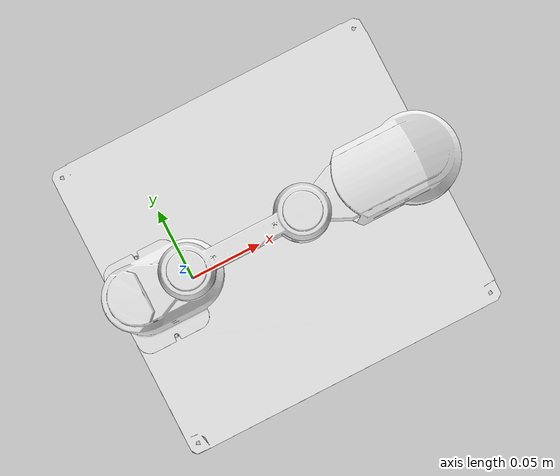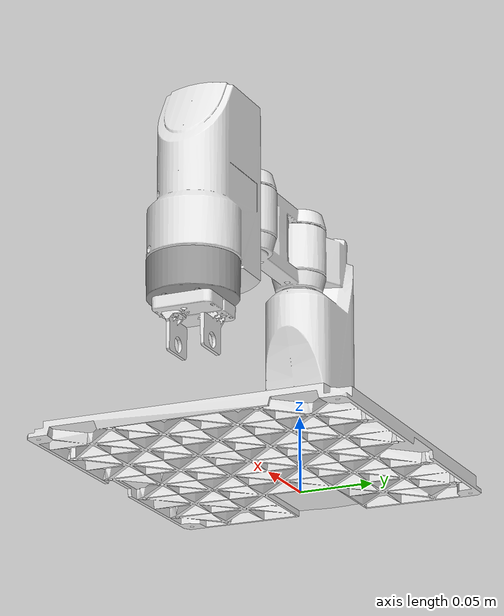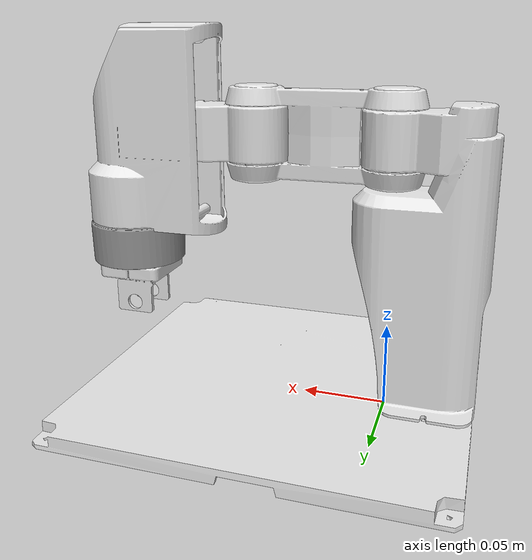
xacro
<?xml version="1.0"?>
<robot name="arm_robot" xmlns:xacro="http://www.ros.org/wiki/xacro">

  <xacro:include filename="$(find scara_robot_samples)/urdf/common.xacro"/>

  <link name="world"/>

  <joint name="base_link_joint" type="fixed">
    <parent link="world"/>
    <child link="base_link"/>
  </joint>
  <!--xacro:boxlink link_name="base_base" mass="0.191" x="0" y="0" z="0.005" depth="0.23" width="0.21" height="0.01"/-->

    <link name="base_link">
      <visual>
        <geometry>
          <mesh filename="package://scara_robot_samples/meshes/dae/scara_base.dae" />
          <!--box size="0.23 0.21 0.009" /-->
        </geometry>
        <!--origin xyz="0.062048 0 0.0045" rpy="0 0 0"/-->
        <origin xyz="0.062049 0 0.0045" rpy="0 0 0"/>
      </visual>
      <collision>
        <geometry>
          <box size="0.23031 0.21022 0.0090636" />
        </geometry>
        <origin xyz="0.062048 0 0.0045" rpy="0 0 0"/>
      </collision>
      <inertial>
        <xacro:box_inertial mass="0.191" depth="0.23031" width="0.21022" height="0.0090636" />
      </inertial>
    </link>

  <!--xacro:armlink link_name="base_base" model_fname="scara_base" mass="0.191" x="0.03103885" y="0" z="0.005" depth="0.23" width="0.21" height="0.01"/-->
  <gazebo reference="base_link">
    <material>Gazebo/White</material>
  </gazebo>

  <joint name="base_pillar_joint" type="fixed">
    <parent link="base_link"/>
    <child link="base_pillar"/>
  </joint>
  <!--xacro:boxlink link_name="base_link" mass="0.139" x="0" y="0" z="0.00349" depth="0.0789772" width="0.0699" height="0.178"/-->
  <!--xacro:armlink link_name="base_link" model_fname="scara_pillar" mass="0.139" x="0" y="0" z="0.00349" depth="0.0789772" width="0.0699" height="0.1814568"/-->

    <link name="base_pillar">
      <visual>
        <geometry>
          <mesh filename="package://scara_robot_samples/meshes/dae/scara_pillar.dae" />
          <!--box size="0.0747846 0.0699 0.178" /-->
        </geometry>
        <origin xyz="-0.017177 0 0.092449" rpy="0 0 0"/>
      </visual>
      <collision>
        <geometry>
          <mesh filename="package://scara_robot_samples/meshes/dae/scara_pillar.dae" />
          <!--box size="0.079075 0.064949 0.17801" /-->
        </geometry>
        <origin xyz="-0.017177 0 0.092449" rpy="0 0 0"/>
      </collision>
      <inertial>
        <xacro:box_inertial mass="0.139" depth="0.079075" width="0.064949" height="0.17801" />
      </inertial>
    </link>

  <gazebo reference="base_pillar">
    <material>Gazebo/White</material>
  </gazebo>

  <joint name="arm1_joint" type="revolute">
    <xacro:armjoint
      parent_link="base_pillar" link_name="arm1_link" lower="-2.443" upper="2.443" velocity="1"
      origin_x="0.0" origin_y="0" origin_z="0.16148" axis_x="0" axis_y="0" axis_z="1">
    </xacro:armjoint>
  </joint>
  <xacro:arm_transmission trans_name="arm1_trans" joint_name="arm1_joint" actuator_name="arm1_motor" />
  <!--xacro:boxlink link_name="arm1_link" mass="0.03" x="0.055" y="0" z="0" depth="0.11" width="0.035" height="0.055"/-->

    <link name="arm1_link">
      <visual>
        <geometry>
          <mesh filename="package://scara_robot_samples/meshes/dae/scara_id1.dae" />
          <!--box size="0.11571 0.035642 0.055002" /-->
        </geometry>
        <origin xyz="0.040328 0 0.0" rpy="0 0 0"/>
      </visual>
      <collision>
        <geometry>
          <mesh filename="package://scara_robot_samples/meshes/dae/scara_id1.dae" />
          <!--box size="0.11571 0.035642 0.055002" /-->
        </geometry>
        <origin xyz="0.040328 0 0.0" rpy="0 0 0"/>
      </collision>
      <inertial>
        <xacro:box_inertial mass="0.03" depth="0.11571" width="0.035642" height="0.055002" />
      </inertial>
    </link>

  <gazebo reference="arm1_link">
    <material>Gazebo/White</material>
  </gazebo>

  <joint name="arm2_joint" type="revolute">
    <xacro:armjoint
      parent_link="arm1_link" link_name="arm2_link" lower="-2.443" upper="2.443" velocity="1"
      origin_x="0.08" origin_y="0" origin_z="0.0" axis_x="0" axis_y="0" axis_z="1">
    </xacro:armjoint>
  </joint>
  <xacro:arm_transmission trans_name="arm2_trans" joint_name="arm2_joint" actuator_name="arm2_motor" />

    <link name="arm2_link">
      <visual>
        <geometry>
          <mesh filename="package://scara_robot_samples/meshes/dae/scara_id2.dae" />
        </geometry>
        <origin xyz="0.02634 0 0.0" rpy="0 0 0"/>
      </visual>
      <collision>
        <geometry>
          <mesh filename="package://scara_robot_samples/meshes/dae/scara_id2.dae" />
          <!--box size="0.036 0.0889 0.037589" /-->
        </geometry>
        <origin xyz="0.02634 0 0.0" rpy="0 0 0"/>
      </collision>
      <inertial>
        <xacro:box_inertial mass="0.08" depth="0.036" width="0.0889" height="0.037589" />
      </inertial>
    </link>

  <gazebo reference="arm2_link">
    <material>Gazebo/White</material>
  </gazebo>

  <joint name="arm3_joint" type="prismatic">
    <xacro:armjoint
      parent_link="arm2_link" link_name="arm3_link" lower="-0.035" upper="0.035" velocity="1"
      origin_x="0.06489" origin_y="0" origin_z="0" axis_x="0" axis_y="0" axis_z="1">
    </xacro:armjoint>
  </joint>
  <xacro:arm_transmission trans_name="arm3_trans" joint_name="arm3_joint" actuator_name="arm3_motor" />
  <!--xacro:boxlink link_name="arm3_link" mass="0.095" x="0" y="0" z="0" depth="0.05" width="0.05" height="0.117"/-->

    <link name="arm3_link">
      <visual>
        <geometry>
          <mesh filename="package://scara_robot_samples/meshes/dae/scara_id3.dae" />
        </geometry>
        <origin xyz="0.001 0 0.0" rpy="0 0 0"/>
      </visual>
      <collision>
        <geometry>
          <!--box size="0.057969 0.085997 0.12258" /-->
          <mesh filename="package://scara_robot_samples/meshes/dae/scara_id3.dae" />
        </geometry>
        <origin xyz="0.001 0 0.0" rpy="0 0 0"/>
      </collision>
      <inertial>
        <xacro:box_inertial mass="0.08" depth="0.057969" width="0.085997" height="0.12258" />
      </inertial>
    </link>

  <gazebo reference="arm3_link">
    <material>Gazebo/White</material>
  </gazebo>

  <joint name="arm4_joint" type="revolute">
    <xacro:armjoint
      parent_link="arm3_link" link_name="arm4_link" lower="-2.617" upper="2.617" velocity="1"
      origin_x="0.015032" origin_y="0" origin_z="-0.048953" axis_x="0" axis_y="0" axis_z="1">
    </xacro:armjoint>
  </joint>
  <xacro:arm_transmission trans_name="arm4_trans" joint_name="arm4_joint" actuator_name="arm4_motor" />
  <!--xacro:boxlink link_name="arm4_link" mass="0.042" x="0" y="0" z="0" depth="0.057" width="0.057" height="0.025"/-->
    <link name="arm4_link">
      <visual>
        <geometry>
          <mesh filename="package://scara_robot_samples/meshes/dae/scara_id4.dae" />
        </geometry>
        <origin xyz="0.001 0 -0.0198" rpy="0 0 0"/>
      </visual>
      <collision>
        <geometry>
          <cylinder length="0.0396" radius="0.05784" />
        </geometry>
        <origin xyz="0.001 0 -0.0198" rpy="0 0 0"/>
      </collision>
      <inertial>
        <xacro:cylinder_inertial mass="0.042" radius="0.05784" length="0.0396" />
      </inertial>
    </link>

  <gazebo reference="arm4_link">
    <material>Gazebo/Gray</material>
  </gazebo>

  <joint name="arm5r_joint" type="prismatic">

    <xacro:armjoint
      parent_link="arm4_link" link_name="arm5r_link" lower="-0.005" upper="0.005" velocity="1"
      origin_x="0.0" origin_y="0.0" origin_z="-0.038115" axis_x="0" axis_y="1" axis_z="0">
    </xacro:armjoint>
  </joint>

  <!--xacro:boxlink link_name="arm5r_link" mass="0.004" x="0" y="0" z="0" depth="0.023" width="0.001" height="0.023"/-->
    <link name="arm5r_link">
      <visual>
        <geometry>
          <mesh filename="package://scara_robot_samples/meshes/dae/scara_id5_r.dae" />
        </geometry>
        <origin xyz="0.0 0 0.0" rpy="0 0 0"/>
      </visual>
      <collision>
        <geometry>
          <mesh filename="package://scara_robot_samples/meshes/dae/scara_id5_r.dae" />
        </geometry>
        <origin xyz="0.0 0 0.0" rpy="0 0 0"/>
      </collision>
      <inertial>
        <xacro:box_inertial mass="0.004" depth="0.040119" width="0.032069" height="0.032527" />
      </inertial>
    </link>

  <gazebo reference="arm5r_link">
    <material>Gazebo/White</material>
  </gazebo>
  <xacro:arm_transmission trans_name="arm5r_trans" joint_name="arm5r_joint" actuator_name="arm5r_motor" />

  <joint name="arm5l_joint" type="prismatic">
    <xacro:armjoint
      parent_link="arm4_link" link_name="arm5l_link" lower="-0.005" upper="0.005" velocity="1"
      origin_x="0.0" origin_y="0.0" origin_z="-0.038115" axis_x="0" axis_y="1" axis_z="0">
    </xacro:armjoint>
    <mimic joint="arm5r_joint" multiplier="-1" offset="0" />
  </joint>

  <xacro:mimic_joint_plugin_gazebo name_prefix="arm5l_joint"
    parent_joint="arm5r_joint" mimic_joint="arm5l_joint"
    has_pid="true" multiplier="-1.0" max_effort="10.0" />

    <link name="arm5l_link">
      <visual>
        <geometry>
          <mesh filename="package://scara_robot_samples/meshes/dae/scara_id5_l.dae" />
        </geometry>
        <origin xyz="0.0 0 0.0" rpy="0 0 0"/>
      </visual>
      <collision>
        <geometry>
          <mesh filename="package://scara_robot_samples/meshes/dae/scara_id5_l.dae" />
        </geometry>
        <origin xyz="0.0 0 0.0" rpy="0 0 0"/>
      </collision>
      <inertial>
        <xacro:box_inertial mass="0.004" depth="0.040119" width="0.032069" height="0.032527" />
      </inertial>
    </link>

  <!--xacro:boxlink link_name="arm5l_link" mass="0.004" x="0" y="0" z="0" depth="0.023" width="0.001" height="0.023"/-->
  <gazebo reference="arm5l_link">
    <material>Gazebo/White</material>
  </gazebo>

  <gazebo>
    <plugin name="gazebo_ros_control" filename="libgazebo_ros_control.so">
      <robotNamespace>/arm_robot</robotNamespace>
      <robotSimType>gazebo_ros_control/DefaultRobotHWSim</robotSimType>
      <legacyModeNS>true</legacyModeNS>
    </plugin>
  </gazebo>
</robot>

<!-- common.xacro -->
<robot xmlns:xacro="http://ros.org/wiki/xacro">
  <property name="M_PI" value="3.14159274"/>

  <xacro:macro name="cylinder_inertial" params="mass radius length">
	<mass value="${mass}"/>
	<inertia ixx="${((radius*radius)/4 + (length*length)/12)*mass}" ixy="0" ixz="0"
			 iyy="${((radius*radius)/4 + (length*length)/12)*mass}" iyz="0"
			 izz="${(mass*radius*radius)/2}" />
  </xacro:macro>

  <xacro:macro name="box_inertial" params="mass height width depth">
	<mass value="${mass}"/>
	<inertia ixx="${(mass*(width*width+depth*depth))/12}" ixy="0" ixz="0"
			 iyy="${(mass*(height*height+depth*depth))/12}" iyz="0"
			 izz="${(mass*(height*height+width*width))/12}" />
  </xacro:macro>

  <xacro:macro name="boxlink" params="link_name mass x y z height width depth">
    <link name="${link_name}">
      <visual>
        <geometry>
          <box size="${depth} ${width} ${height}" />
        </geometry>
        <origin xyz="${x} ${y} ${z}" rpy="0 0 0"/>
      </visual>
      <collision>
        <geometry>
          <box size="${depth} ${width} ${height}" />
        </geometry>
        <origin xyz="${x} ${y} ${z}" rpy="0 0 0"/>
      </collision>
      <inertial>
        <mass value="${mass}"/>
        <origin xyz="${x} ${y} ${z}" rpy="0 0 0"/>
	<inertia ixx="${(mass*(width*width+depth*depth))/12}" ixy="0" ixz="0"
			 iyy="${(mass*(height*height+depth*depth))/12}" iyz="0"
			 izz="${(mass*(height*height+width*width))/12}" />
      </inertial>
    </link>
  </xacro:macro>

  <xacro:macro name="armlink" params="link_name model_fname mass x y z height width depth">
    <link name="${link_name}">
      <visual>
        <geometry>
          <mesh filename="package://scara_robot_samples/meshes/dae/${model_fname}.dae" />
        </geometry>
        <origin xyz="${x} ${y} ${z}" rpy="0 0 0"/>
      </visual>
      <collision>
        <geometry>
          <mesh filename="package://scara_robot_samples/meshes/stl/${model_fname}.stl" />
        </geometry>
        <origin xyz="${x} ${y} ${z}" rpy="0 0 0"/>
      </collision>
      <inertial>
        <mass value="${mass}"/>
        <origin xyz="${x} ${y} ${z}" rpy="0 0 0"/>
	<inertia ixx="${(mass*(width*width+depth*depth))/12}" ixy="0" ixz="0"
			 iyy="${(mass*(height*height+depth*depth))/12}" iyz="0"
			 izz="${(mass*(height*height+width*width))/12}" />
      </inertial>
    </link>
  </xacro:macro>

  <xacro:macro name="armjoint"
      params="parent_link link_name lower upper velocity origin_x origin_y origin_z axis_x axis_y axis_z">
      <origin xyz="${origin_x} ${origin_y} ${origin_z}" rpy="0 0 0"/>
      <axis xyz="${axis_x} ${axis_y} ${axis_z}"/>
      <parent link="${parent_link}"/>
      <child link="${link_name}"/>
      <dynamics damping="0.1" />
      <limit effort="5" lower="${lower}" upper="${upper}" velocity="${velocity}" />
  </xacro:macro>

  <xacro:macro name="arm_transmission"
      params="trans_name joint_name actuator_name">
    <transmission name="${trans_name}">
      <type>transmission_interface/SimpleTransmission</type>
      <joint name="${joint_name}">
        <hardwareInterface>hardware_interface/PositionJointInterface</hardwareInterface>
      </joint>
      <actuator name="${actuator_name}">
        <hardwareInterface>hardware_interface/PositionJointInterface</hardwareInterface>
        <mechanicalReduction>1</mechanicalReduction>
      </actuator>
    </transmission>
  </xacro:macro>

  <xacro:macro name="mimic_joint_plugin_gazebo" params="name_prefix parent_joint mimic_joint has_pid:=false multiplier:=1.0 offset:=0 sensitiveness:=0.0 max_effort:=1.0 robot_namespace:=''">
    <gazebo>
      <plugin name="${name_prefix}mimic_joint_plugin" filename="libroboticsgroup_gazebo_mimic_joint_plugin.so">
        <joint>${parent_joint}</joint>
        <mimicJoint>${mimic_joint}</mimicJoint>
        <xacro:if value="${has_pid}">                     <!-- if set to true, PID parameters from "/gazebo_ros_control/pid_gains/${mimic_joint}" are loaded -->
          <hasPID />
        </xacro:if>
        <multiplier>${multiplier}</multiplier>
        <offset>${offset}</offset>
        <sensitiveness>${sensitiveness}</sensitiveness>   <!-- if absolute difference between setpoint and process value is below this threshold, do nothing; 0.0 = disable [rad] -->
        <maxEffort>${max_effort}</maxEffort>              <!-- only taken into account if has_pid:=true [Nm] -->
        <xacro:unless value="${robot_namespace == ''}">
          <robotNamespace>($robot_namespace)</robotNamespace>
        </xacro:unless>
      </plugin>
    </gazebo>
  </xacro:macro>

</robot>
